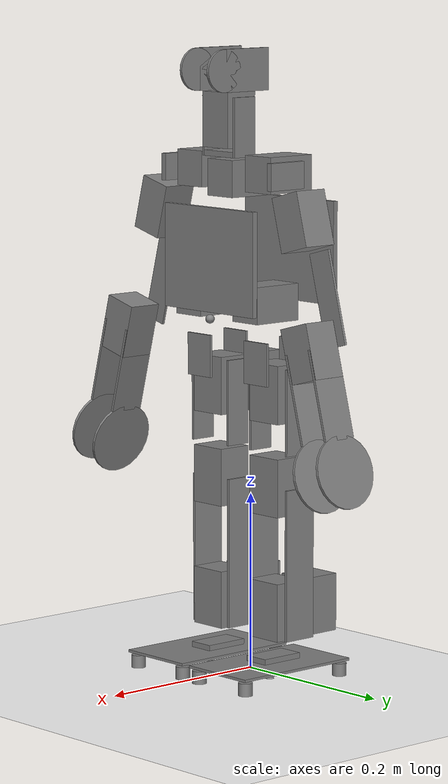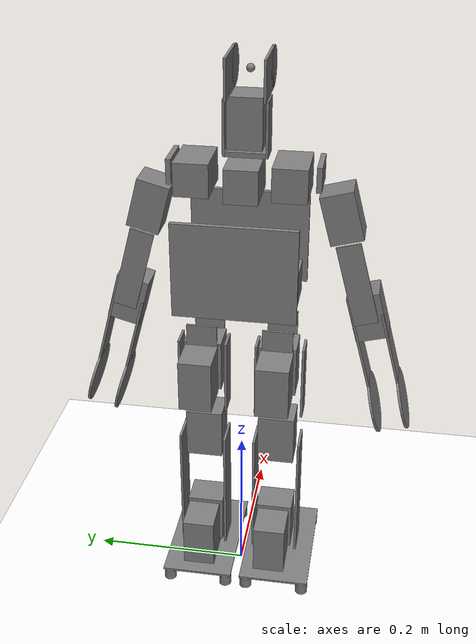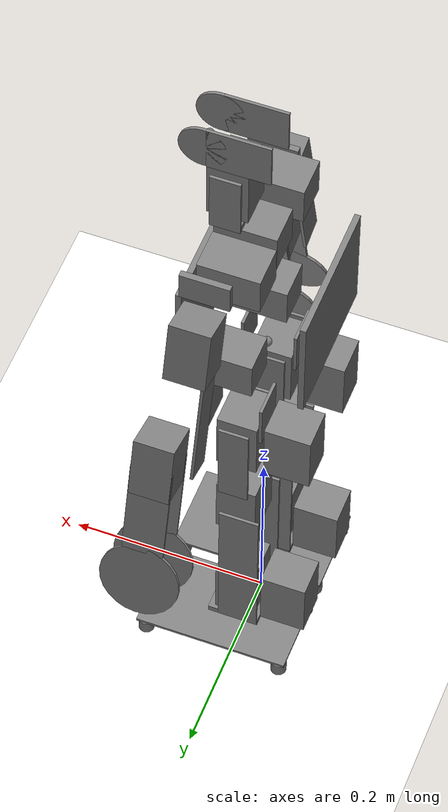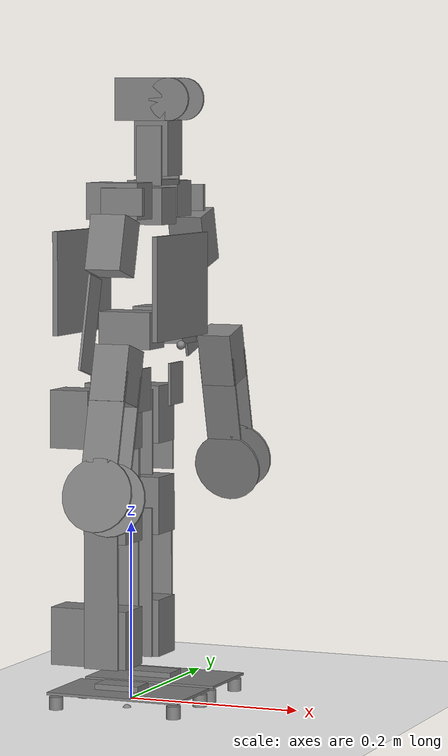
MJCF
<mujoco model="scene">
    <include file="sigmaban2024_motors_backlash.xml" />

    <visual>
        <headlight
            diffuse="0.6 0.6 0.6"
            ambient="0.3 0.3 0.3"
            specular="0 0 0"
        />
        <rgba haze="0.15 0.25 0.35 1" />
        <global azimuth="160" elevation="-20" />
    </visual>

    <asset>
        <texture
            type="skybox"
            builtin="gradient"
            rgb1="1 1 1"
            rgb2="1 1 1"
            width="800"
            height="800"
        />
        <texture
            type="2d"
            name="groundplane"
            builtin="checker"
            mark="edge"
            rgb1="1 1 1"
            rgb2="1 1 1"
            markrgb="0 0 0"
            width="300"
            height="300"
        />
        <material
            name="groundplane"
            texture="groundplane"
            texuniform="true"
            texrepeat="5 5"
            reflectance="0"
        />
    </asset>

    <worldbody>
        <body name="floor">
            <geom
                name="floor"
                size="0 0 0.01"
                type="plane"
                material="groundplane"
                contype="1"
                conaffinity="0"
                priority="1"
                friction="0.6"
                condim="3"
            />
        </body>
    </worldbody>

    <keyframe>
        <key
            name="home"
            qpos="
			    0 0 0.4
			    1 0 0 0

				0 0
				0 0
				0 0
				0 0
				0 0
				0 0
				0 0
				0 0

				0 0
				0 0
				-0.48 0
				1.0 0
				-0.48 0
				0 0

				0 0
				0 0
				-0.48 0
				1.00 0
				-0.48 0
				0 0

"
            ctrl="
				0
				0
				0
				0
				0
				0
				0
				0

				0
				0
				-0.48
				1.0
				-0.48
				0

				0
				0
				-0.48
				1.0
				-0.48
				0
          "
        />
    </keyframe>

    <!-- Marc's pose below -->

</mujoco>

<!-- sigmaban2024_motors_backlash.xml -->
<mujoco model="sigmaban">
    <compiler angle="radian"/>

    <default>
        <geom contype="0" conaffinity="0"/>
        <default class="cleat">
            <geom conaffinity="1" contype="1"/>
        </default>
    </default>

    <!-- KP=12 -->
    <default>
        <default class="mx106">
            <motor ctrlrange="-8 8"/>
            <joint damping="1.7" armature="0.025" frictionloss="0.10"/>
        </default>
        <default class="mx64">
            <motor ctrlrange="-5 5"/>
            <joint damping="0.66" armature="0.012" frictionloss="0.09"/>
        </default>
        <default class="backlash">
          <!-- +/- 0.5° of backlash -->
          <joint damping="0.01" frictionloss="0" armature="0.01" limited="true"
            range="-0.008726646259971648 0.008726646259971648"/>
        </default>
    </default>

    <!-- KP=18 -->

    <!-- KP=24 -->

    <!-- KP=32 (base pour la règle de 3)-->

    <option iterations="1" ls_iterations="5">
        <flag eulerdamp="disable"/>
    </option>

    <sensor>
        <gyro site="torso" name="gyro"/>
        <velocimeter site="torso" name="local_linvel"/>
        <accelerometer site="torso" name="accelerometer"/>
        <framezaxis objtype="site" objname="torso" name="upvector"/>
        <framexaxis objtype="site" objname="torso" name="forwardvector"/>
        <framelinvel objtype="site" objname="torso" name="global_linvel"/>
        <frameangvel objtype="site" objname="torso" name="global_angvel"/>
        <framepos objtype="site" objname="torso" name="position"/>
        <framequat objtype="site" objname="torso" name="orientation"/>
        <framelinvel objtype="site" objname="right_foot" name="right_foot_global_linvel"/>
        <framelinvel objtype="site" objname="left_foot" name="left_foot_global_linvel"/>
        <framexaxis objtype="site" objname="left_foot" name="left_foot_upvector"/>
        <framexaxis objtype="site" objname="right_foot" name="right_foot_upvector"/>
        <framepos objtype="site" objname="left_foot" name="left_foot_pos"/>
        <framepos objtype="site" objname="right_foot" name="right_foot_pos"/>
    </sensor>

    <worldbody>
        <body name="torso_2023" pos="0 0 0.4">
            <freejoint name="root"/>
            <site name="torso"/>
            <inertial pos="0.00156484 6.73262e-05 0.070745" quat="0.99676 -0.0200847 -0.0149022 0.0764468"
                mass="3.27516" diaginertia="0.0199727 0.0188364 0.0126333"/>
            <geom size="0.0725 0.057796 0.003" pos="0.0603892 1.47174e-07 0.0680823" quat="0.5 -0.5 0.5 -0.5" type="box"/>
            <geom size="0.0201 0.03055 0.0205" pos="0.0209392 0.0464001 0.022" quat="0 0.707107 -0.707107 0" type="box"/>
            <geom size="0.0201 0.03055 0.0205" pos="0.0209392 -0.0463999 0.022" quat="0 0.707107 -0.707107 0" type="box"/>
            <geom size="0.0201 0.03055 0.0205" pos="0.0158392 1.47174e-07 0.157" quat="0.707107 0 0 -0.707107"
                type="box"/>
            <geom size="0.0725 0.057796 0.003" pos="-0.0596108 1.47174e-07 0.0719177" quat="0.5 0.5 0.5 0.5" type="box"/>
            <geom size="0.0201 0.03055 0.0205" pos="0.0108392 0.0560001 0.164" quat="0.5 -0.5 -0.5 -0.5" type="box"/>
            <geom size="0.0201 0.03055 0.0205" pos="0.0108392 -0.0559999 0.164" quat="0.5 0.5 0.5 -0.5" type="box"/>
            <body name="head_base" pos="0.0333892 1.47174e-07 0.183">
                <inertial pos="0 0 0" mass="1e-09" diaginertia="0 0 0"/>
            </body>
            <site name="trunk" pos="0.0608892 1.47174e-07 0.0025"/>
            <body name="u_neck" pos="0.0333892 1.47174e-07 0.1805" quat="0.707107 0 0 -0.707107">
                <inertial pos="0 0 0.0206334" quat="0.707107 0 0 0.707107" mass="0.0544799"
                    diaginertia="5.16952e-05 3.05787e-05 2.98525e-05"/>
                <joint class="mx64" name="head_yaw" pos="0 0 0" axis="0 0 1"/>
                <joint name="head_yaw_backlash" pos="0 0 0" axis="0 0 1" class="backlash"/>
                <geom size="0.015 0.032901 0.0015" pos="0.025 0 0.032901" quat="0.5 0.5 -0.5 -0.5" type="box"/>
                <geom size="0.015 0.032901 0.0015" pos="-0.025 0 0.032901" quat="0.5 0.5 0.5 0.5" type="box"/>
                <geom size="0.0245 0.015 0.003125" pos="0 0 0.003125" quat="0 1 0 0" type="box"/>
                <body name="head_2023__field_of_view_false" pos="-0.0235 0 0.058302" quat="0.5 0.5 -0.5 -0.5">
                    <inertial pos="-0.000139837 0.00397747 -0.0233757" quat="0.713826 0.697167 -0.0325639 0.0578699"
                        mass="0.257265" diaginertia="0.000251953 0.000245992 0.000105535"/>
                    <joint class="mx64" name="head_pitch" pos="0 0 0" axis="0 0 1"/>
                    <joint name="head_pitch_backlash" pos="0 0 0" axis="0 0 1" class="backlash"/>
                    <geom size="0.0235 0.0015" pos="-0.0238 0.0365 -0.005" quat="0 0 1 0" type="cylinder"/>
                    <geom size="0.0308 0.0235 0.0015" pos="0.01 0.0365 -0.005" quat="0 0 1 0" type="box"/>
                    <geom size="0.0235 0.0015" pos="-0.0238 0.0365 -0.049" quat="0 0 1 0" type="cylinder"/>
                    <geom size="0.0308 0.0235 0.0015" pos="0.01 0.0365 -0.049" quat="0 0 1 0" type="box"/>
                    <geom size="0.0201 0.03055 0.0205" pos="0 -0.01755 -0.0235" type="box"/>
                    <site name="camera" pos="-0.024933 0.0335 -0.0235" quat="0 0.707107 0 -0.707107"/>
                </body>
            </body>
            <body name="u_shoulder_2023" pos="0.0283892 0.0795001 0.164" quat="0.707107 -0.707107 0 0">
                <inertial pos="0 0.00364642 0.0214003" quat="0.534183 0.463302 0.534183 0.463302" mass="0.0751043"
                    diaginertia="5.70899e-05 4.53448e-05 3.35766e-05"/>
                <joint class="mx64" name="left_shoulder_pitch" pos="0 0 0" axis="0 0 1"/>
                <joint name="left_shoulder_pitch_backlash" pos="0 0 0" axis="0 0 1" class="backlash"/>
                <geom size="0.0245 0.015 0.003125" pos="0 0 0.007125" quat="0 -1 0 0" type="box"/>
                <body name="left_humerus" pos="0.0235 0.03 0.03" quat="0.092296 -0.701057 0.092296 -0.701057">
                    <inertial pos="0.000340637 -0.0522685 -0.0268822" quat="0.6755 0.737155 -0.00965607 0.0144769"
                        mass="0.243502" diaginertia="0.0007708 0.000757172 7.90289e-05"/>
                    <joint class="mx64" name="left_shoulder_roll" pos="0 0 0" axis="0 0 1"/>
                    <joint name="left_shoulder_backlash" pos="0 0 0" axis="0 0 1" class="backlash"/>
                    <geom size="0.0201 0.03055 0.0205" pos="0 -0.01755 -0.0235" type="box"/>
                    <geom size="0.0525 0.015 0.0015" pos="0 -0.1045 -0.04" quat="0 0.707107 -0.707107 0" type="box"/>
                    <body name="radius_v2" pos="0.0235 -0.142 -0.0025" quat="0.707107 0 0.707107 0">
                        <inertial pos="7.98171e-05 -0.0556905 -0.0234333" quat="0.516125 0.5144 -0.483923 0.484589"
                            mass="0.256846" diaginertia="0.000947096 0.000937203 0.000130591"/>
                        <joint class="mx64" name="left_elbow" pos="0 0 0" axis="0 0 1"/>
                        <joint name="left_elbow_backlash" pos="0 0 0" axis="0 0 1" class="backlash"/>
                        <geom size="0.04 0.0015" pos="0 -0.1496 -0.042" quat="0.707107 0 0 -0.707107" type="cylinder"/>
                        <geom size="0.0497756 0.0206 0.0015" pos="0 -0.0649756 -0.042" quat="0.707107 0 0 -0.707107"
                            type="box"/>
                        <geom size="0.0201 0.03055 0.0205" pos="0 -0.01755 -0.0235" quat="1 0 0 0" type="box"/>
                        <geom size="0.04 0.0015" pos="0 -0.1496 -0.005" quat="0.707107 0 0 -0.707107" type="cylinder"/>
                        <geom size="0.0497756 0.0206 0.0015" pos="0 -0.0649756 -0.005" quat="0.707107 0 0 -0.707107"
                            type="box"/>
                    </body>
                </body>
            </body>
            <body name="u_shoulder_2023_2" pos="0.0283892 -0.0794999 0.164" quat="0 0 -0.707107 -0.707107">
                <inertial pos="0 -0.00364642 -0.0214003" quat="0.534183 0.463302 0.534183 0.463302" mass="0.0751043"
                    diaginertia="5.70899e-05 4.53448e-05 3.35766e-05"/>
                <joint class="mx64" name="right_shoulder_pitch" pos="0 0 0" axis="0 0 1"/>
                <joint name="right_shoulder_pitch_backlash" pos="0 0 0" axis="0 0 1" class="backlash"/>
                <geom size="0.0245 0.015 0.003125" pos="0 0 -0.007125" type="box"/>
                <body name="right_humerus" pos="-0.0235 -0.03 -0.03" quat="0.701057 0.092296 -0.701057 -0.092296">
                    <inertial pos="-0.000172255 -0.0522685 -0.0268669" quat="0.675487 0.736848 -0.0236007 0.014685"
                        mass="0.243502" diaginertia="0.000770875 0.000757172 7.90454e-05"/>
                    <joint class="mx64" name="right_shoulder_roll" pos="0 0 0" axis="0 0 1"/>
                    <joint name="right_shoulder_roll_backlash" pos="0 0 0" axis="0 0 1" class="backlash"/>
                    <geom size="0.0525 0.015 0.0015" pos="0 -0.1045 -0.04" quat="0 -0.707107 0.707107 0" type="box"/>
                    <geom size="0.0201 0.03055 0.0205" pos="0 -0.01755 -0.0235" type="box"/>
                    <body name="radius_v2_2" pos="-0.0235 -0.142 -0.0025" quat="0 -0.707107 0 -0.707107">
                        <inertial pos="7.98171e-05 0.0556905 0.0234333" quat="0.484589 0.483923 -0.5144 0.516125"
                            mass="0.256846" diaginertia="0.000947096 0.000937203 0.000130591"/>
                        <joint class="mx64" name="right_elbow" pos="0 0 0" axis="0 0 1"/>
                        <joint name="right_elbow_backlash" pos="0 0 0" axis="0 0 1" class="backlash"/>
                        <geom size="0.04 0.0015" pos="0 0.1496 0.005" quat="0 0.707107 0.707107 0" type="cylinder"/>
                        <geom size="0.0497756 0.0206 0.0015" pos="0 0.0649756 0.005" quat="0 0.707107 0.707107 0"
                            type="box"/>
                        <geom size="0.04 0.0015" pos="0 0.1496 0.042" quat="0 0.707107 0.707107 0" type="cylinder"/>
                        <geom size="0.0497756 0.0206 0.0015" pos="0 0.0649756 0.042" quat="0 0.707107 0.707107 0"
                            type="box"/>
                        <geom size="0.0201 0.03055 0.0205" pos="0 0.01755 0.0235" quat="0 1 0 0" type="box"/>
                    </body>
                </body>
            </body>
            <body name="u_block_2023" pos="0.0033892 0.0464001 -0.021" quat="0 0 0 -1">
                <inertial pos="-0.00509532 -8.44195e-07 -0.00985131" quat="0.531959 0.465906 0.466024 0.531765"
                    mass="0.0630136" diaginertia="4.24266e-05 3.5526e-05 2.00009e-05"/>
                <joint class="mx64" name="left_hip_yaw" pos="0 0 0" axis="0 0 1"/>
                <joint name="left_hip_yaw_backlash" pos="0 0 0" axis="0 0 1" class="backlash"/>
                <geom size="0.01875 0.02375 0.0015" pos="-0.03144 0 -0.02375" quat="0.5 0.5 0.5 0.5" type="box"/>
                <geom size="0.01875 0.02375 0.0015" pos="0.0219 0 -0.02375" quat="0.5 -0.5 0.5 -0.5" type="box"/>
                <body name="mx106_block_hip__list_0bj1pweadmbeeq_hip" pos="0.0234 0 -0.04" quat="0.5 0.5 -0.5 -0.5">
                    <inertial pos="-0.000525167 -0.0153964 0.00382779" quat="0.996695 -0.0796662 -0.00761504 0.0139099"
                        mass="0.397097" diaginertia="0.000428697 0.000375755 0.000176713"/>
                    <joint class="mx106" name="left_hip_roll" pos="0 0 0" axis="0 0 1"/>
                    <joint name="left_hip_roll_backlash" pos="0 0 0" axis="0 0 1" class="backlash"/>
                    <geom size="0.0201 0.03255 0.023" pos="0 -0.01805 -0.026" type="box"/>
                    <geom size="0.0201 0.03255 0.023" pos="0 -0.01805 0.0234" quat="0.707107 0 0.707107 0" type="box"/>
                    <body name="left_knee_2023" pos="0.0295 0 0.0234" quat="0 0.707107 0 0.707107">
                        <inertial pos="-3.04946e-05 0.100616 -0.0296228"
                            quat="0.722599 0.691267 -0.000117213 -0.000114115" mass="0.268473"
                            diaginertia="0.000539256 0.000462483 0.000122223"/>
                        <joint class="mx106" name="left_hip_pitch" pos="0 0 0" axis="0 0 1"/>
                        <joint name="left_hip_pitch_backlash" pos="0 0 0" axis="0 0 1" class="backlash"/>
                        <geom size="0.0201 0.03255 0.023" pos="0 0.12195 -0.0295" quat="1 0 0 0" type="box"/>
                        <geom size="0.015 0.04825 0.0015" pos="0 0.03725 -0.057" quat="0 1 0 0" type="box"/>
                        <geom size="0.015 0.04825 0.0015" pos="0 0.03725 0.0015" type="box"/>
                        <body name="tibia_2023" pos="0 0.14 -0.001" quat="1 0 0 0">
                            <inertial pos="-0.00296199 0.0631405 -0.0268398"
                                quat="0.706918 0.707174 -0.00934954 -0.00915237" mass="0.113077"
                                diaginertia="0.000351979 0.00027164 0.000103748"/>
                            <joint class="mx106" name="left_knee" pos="0 0 0" axis="0 0 1"/>
                            <joint name="left_knee_backlash" pos="0 0 0" axis="0 0 1" class="backlash"/>
                            <geom size="0.0202131 0.0850495 0.0015" pos="-0.0062131 0.068951 0.0015" quat="0 0 -1 0"
                                type="box"/>
                            <geom size="0.0202131 0.0850495 0.0015" pos="-0.0062131 0.068951 -0.05594" quat="0 0 -1 0"
                                type="box"/>
                            <body name="mx106_block_mir_ankle" pos="0 0.14 0" quat="0 0 0 1">
                                <inertial pos="0.0195695 0.0153964 -0.0290274"
                                    quat="-0.0662501 0.699432 0.0464073 0.710107" mass="0.397097"
                                    diaginertia="0.000428738 0.000375795 0.000176713"/>
                                <joint class="mx106" name="left_ankle_pitch" pos="0 0 0" axis="0 0 1"/>
                                <joint name="left_ankle_pitch_backlash" pos="0 0 0" axis="0 0 1" class="backlash"/>
                                <geom size="0.0201 0.03255 0.023" pos="0 0.01805 -0.0285" quat="0 0 0 1" type="box"/>
                                <geom size="0.0201 0.03255 0.023" pos="0.0494 0.01805 -0.0285"
                                    quat="0 -0.707107 0 0.707107" type="box"/>
                                <body name="left_foot___list_t0v6opd9rekumc_default" pos="0.0234 0 -0.0285"
                                    quat="0.707107 0 -0.707107 0">
                                    <inertial pos="0.00454445 -0.0365542 0.0466461"
                                        quat="0.711591 -0.00419889 0.011253 0.702491" mass="0.281856"
                                        diaginertia="0.000922792 0.000718237 0.000264953"/>
                                    <joint class="mx106" name="left_ankle_roll" pos="0 0 0" axis="0 0 1"/>
                                    <joint name="left_ankle_roll_backlash" pos="0 0 0" axis="0 0 1" class="backlash"/>
                                    <geom size="0.02617 0.015 0.003125" pos="0 -0.036875 0.02817"
                                        quat="0.5 0.5 0.5 -0.5" type="box"/>
                                    <geom size="0.046 0.0788 0.0015" pos="0.0055 -0.0415 0.03867"
                                        quat="0.707107 -0.707107 0 0" type="box" name="left_foot_rectangle"/>

                                    <body name="left_foot_cleat_back_left">
                                        <site name="left_foot_cleat_back_left" quat="0.5 -0.5 -0.5 -0.5"/>
                                        <geom class="cleat" size="0.008 0.008" pos="0.0435 -0.0535 -0.03213"
                                            quat="0.707107 0.707107 0 0" type="cylinder" name="left_foot_cleat_back_left"/>
                                    </body>

                                    <body name="left_foot_cleat_back_right">
                                        <site name="left_foot_cleat_back_right" quat="0.5 -0.5 -0.5 -0.5"/>
                                        <geom class="cleat" size="0.008 0.008" pos="-0.0325 -0.0535 -0.03213"
                                            quat="0.707107 0.707107 0 0" type="cylinder" name="left_foot_cleat_back_right"/>
                                    </body>

                                    <body name="left_foot_cleat_front_left">
                                        <site name="left_foot_cleat_front_left" quat="0.5 -0.5 -0.5 -0.5"/>
                                        <geom class="cleat" size="0.008 0.008" pos="0.0435 -0.0535 0.10947"
                                            quat="0 0 -0.707107 0.707107" type="cylinder" name="left_foot_cleat_front_left"/>
                                    </body>

                                    <body name="left_foot_cleat_front_right">
                                        <site name="left_foot_cleat_front_right" quat="0.5 -0.5 -0.5 -0.5"/>
                                        <geom class="cleat" size="0.008 0.008" pos="-0.0325 -0.0535 0.10947"
                                            quat="0 0 -0.707107 0.707107" type="cylinder" name="left_foot_cleat_front_right"/>
                                    </body>

                                    <site name="left_foot" pos="0.003 -0.0615 0.03617" quat="0.5 -0.5 -0.5 -0.5"/>

                                    <body name="left_ps_0" pos="-0.0325 -0.0615 0.10947" quat="0.5 -0.5 -0.5 -0.5">
                                        <inertial pos="0 0 0" mass="1e-09" diaginertia="0 0 0"/>
                                    </body>
                                    <body name="left_ps_1" pos="-0.0325 -0.0615 -0.03213" quat="0.5 -0.5 -0.5 -0.5">
                                        <inertial pos="0 0 0" mass="1e-09" diaginertia="0 0 0"/>
                                    </body>
                                    <body name="left_ps_2" pos="0.0435 -0.0615 -0.03213" quat="0.5 -0.5 -0.5 -0.5">
                                        <inertial pos="0 0 0" mass="1e-09" diaginertia="0 0 0"/>
                                    </body>
                                    <body name="left_ps_3" pos="0.0435 -0.0615 0.10947" quat="0.5 -0.5 -0.5 -0.5">
                                        <inertial pos="0 0 0" mass="1e-09" diaginertia="0 0 0"/>
                                    </body>
                                </body>
                            </body>
                        </body>
                    </body>
                </body>
            </body>
            <body name="u_block_2023_2" pos="0.0033892 -0.0463999 -0.021" quat="0 0 0 -1">
                <inertial pos="-0.00509532 -8.44195e-07 -0.00985131" quat="0.531959 0.465906 0.466024 0.531765"
                    mass="0.0630136" diaginertia="4.24266e-05 3.5526e-05 2.00009e-05"/>
                <joint class="mx64" name="right_hip_yaw" pos="0 0 0" axis="0 0 1"/>
                <joint name="right_hip_yaw_backlash" pos="0 0 0" axis="0 0 1" class="backlash"/>
                <geom size="0.01875 0.02375 0.0015" pos="-0.03144 0 -0.02375" quat="0.5 0.5 0.5 0.5" type="box"/>
                <geom size="0.01875 0.02375 0.0015" pos="0.0219 0 -0.02375" quat="0.5 -0.5 0.5 -0.5" type="box"/>
                <body name="mx106_block_mir_hip__list_mr67plvazplf9a_hip" pos="0.0234 0 -0.04" quat="0.5 0.5 -0.5 -0.5">
                    <inertial pos="0.000527445 -0.0153964 0.00383064" quat="0.996695 -0.0796624 0.0075433 -0.0140338"
                        mass="0.397097" diaginertia="0.000428741 0.000375798 0.000176713"/>
                    <joint class="mx106" name="right_hip_roll" pos="0 0 0" axis="0 0 1"/>
                    <joint name="right_hip_roll_backlash" pos="0 0 0" axis="0 0 1" class="backlash"/>
                    <geom size="0.0201 0.03255 0.023" pos="0 -0.01805 -0.026" type="box"/>
                    <geom size="0.0201 0.03255 0.023" pos="0 -0.01805 0.0234" quat="0.707107 0 -0.707107 0" type="box"/>
                    <body name="right_knee_2023" pos="-0.0295 0 0.0234" quat="0.707107 0 0.707107 0">
                        <inertial pos="-3.04946e-05 -0.100616 0.0296089"
                            quat="0.722631 0.691234 0.000116647 0.000114696" mass="0.268473"
                            diaginertia="0.000539257 0.000462486 0.000122221"/>
                        <joint class="mx106" name="right_hip_pitch" pos="0 0 0" axis="0 0 1"/>
                        <joint name="right_hip_pitch_backlash" pos="0 0 0" axis="0 0 1" class="backlash"/>
                        <geom size="0.015 0.04825 0.0015" pos="0 -0.03725 -0.0015" quat="0 1 0 0" type="box"/>
                        <geom size="0.015 0.04825 0.0015" pos="0 -0.03725 0.057" quat="1 0 0 0" type="box"/>
                        <geom size="0.0201 0.03255 0.023" pos="0 -0.12195 0.0295" quat="0 -1 0 0" type="box"/>
                        <body name="tibia_2023_2" pos="0 -0.14 0.001" quat="0 0 0 -1">
                            <inertial pos="-0.00296199 0.0631406 0.0268398"
                                quat="0.707175 0.706918 -0.00915244 -0.00934946" mass="0.113077"
                                diaginertia="0.000351979 0.00027164 0.000103748"/>
                            <joint class="mx106" name="right_knee" pos="0 0 0" axis="0 0 1"/>
                            <joint name="right_knee_backlash" pos="0 0 0" axis="0 0 1" class="backlash"/>
                            <geom size="0.0202131 0.0850495 0.0015" pos="-0.0062131 0.068951 0.05594" quat="0 0 1 0"
                                type="box"/>
                            <geom size="0.0202131 0.0850495 0.0015" pos="-0.0062131 0.068951 -0.0015" quat="0 0 -1 0"
                                type="box"/>
                            <body name="mx106_block_ankle__list_0bj1pweadmbeeq_default" pos="0 0.14 0" quat="1 0 0 0">
                                <inertial pos="-0.0195724 -0.0153964 0.0290252"
                                    quat="-0.0661652 0.699382 0.0464976 0.710158" mass="0.397097"
                                    diaginertia="0.000428694 0.000375752 0.000176714"/>
                                <joint class="mx106" name="right_ankle_pitch" pos="0 0 0" axis="0 0 1"/>
                                <joint name="right_ankle_pitch_backlash" pos="0 0 0" axis="0 0 1" class="backlash"/>
                                <geom size="0.0201 0.03255 0.023" pos="0 -0.01805 0.0285" quat="0 0 -1 0" type="box"/>
                                <geom size="0.0201 0.03255 0.023" pos="-0.0494 -0.01805 0.0285"
                                    quat="0.707107 0 0.707107 0" type="box"/>
                                <body name="right_foot_" pos="-0.0234 0 0.0285" quat="0 -0.707107 0 -0.707107">
                                    <inertial pos="-0.00454439 -0.0365542 0.0466461"
                                        quat="0.702491 -0.0112532 0.00419872 0.711591" mass="0.281856"
                                        diaginertia="0.000922792 0.000718237 0.000264953"/>
                                    <joint class="mx106" name="right_ankle_roll" pos="0 0 0" axis="0 0 1"/>
                                    <joint name="right_ankle_roll_backlash" pos="0 0 0" axis="0 0 1" class="backlash"/>
                                    <geom size="0.02617 0.015 0.003125" pos="0 -0.036875 0.02817"
                                        quat="0.5 0.5 0.5 -0.5" type="box"/>
                                    <geom size="0.046 0.0788 0.0015" pos="-0.0055 -0.0415 0.03867"
                                        quat="0.707107 -0.707107 0 0" type="box" name="right_foot_rectangle"/>

                                    <body name="right_foot_cleat_back_right">
                                        <site name="right_foot_cleat_back_right" quat="0.5 -0.5 -0.5 -0.5"/>
                                        <geom class="cleat" size="0.008 0.008" pos="-0.0435 -0.0535 -0.03213"
                                            quat="0.707107 0.707107 0 0" type="cylinder" name="right_foot_cleat_back_right"/>
                                    </body>
                                    <body name="right_foot_cleat_back_left">
                                        <site name="right_foot_cleat_back_left" quat="0.5 -0.5 -0.5 -0.5"/>
                                        <geom class="cleat" size="0.008 0.008" pos="0.0325 -0.0535 -0.03213"
                                            quat="0.707107 0.707107 0 0" type="cylinder" name="right_foot_cleat_back_left"/>
                                    </body>
                                    <body name="right_foot_cleat_front_right">
                                        <site name="right_foot_cleat_front_right" quat="0.5 -0.5 -0.5 -0.5"/>
                                        <geom class="cleat" size="0.008 0.008" pos="-0.0435 -0.0535 0.10947"
                                            quat="0 0 -0.707107 0.707107" type="cylinder" name="right_foot_cleat_front_right"/>
                                    </body>
                                    <body name="right_foot_cleat_front_left">
                                        <site name="right_foot_cleat_front_left" quat="0.5 -0.5 -0.5 -0.5"/>

                                        <geom class="cleat" size="0.008 0.008" pos="0.0325 -0.0535 0.10947"
                                            quat="0 0 -0.707107 0.707107" type="cylinder" name="right_foot_cleat_front_left"/>
                                    </body>

                                    <site name="right_foot" pos="-0.003 -0.0615 0.03617" quat="0.5 -0.5 -0.5 -0.5"/>

                                    <body name="right_ps_0" pos="-0.0435 -0.0615 0.10947" quat="0.5 -0.5 -0.5 -0.5">
                                        <inertial pos="0 0 0" mass="1e-09" diaginertia="0 0 0"/>
                                    </body>
                                    <body name="right_ps_1" pos="-0.0435 -0.0615 -0.03213" quat="0.5 -0.5 -0.5 -0.5">
                                        <inertial pos="0 0 0" mass="1e-09" diaginertia="0 0 0"/>
                                    </body>
                                    <body name="right_ps_2" pos="0.0325 -0.0615 -0.03213" quat="0.5 -0.5 -0.5 -0.5">
                                        <inertial pos="0 0 0" mass="1e-09" diaginertia="0 0 0"/>
                                    </body>
                                    <body name="right_ps_3" pos="0.0325 -0.0615 0.10947" quat="0.5 -0.5 -0.5 -0.5">
                                        <inertial pos="0 0 0" mass="1e-09" diaginertia="0 0 0"/>
                                    </body>
                                </body>
                            </body>
                        </body>
                    </body>
                </body>
            </body>
        </body>
    </worldbody>

    <sensor>
        <force site="left_foot_cleat_front_right" name="left_foot_cleat_front_right"/>
        <force site="left_foot_cleat_front_left" name="left_foot_cleat_front_left"/>
        <force site="left_foot_cleat_back_right" name="left_foot_cleat_back_right"/>
        <force site="left_foot_cleat_back_left" name="left_foot_cleat_back_left"/>
        <force site="right_foot_cleat_front_right" name="right_foot_cleat_front_right"/>
        <force site="right_foot_cleat_front_left" name="right_foot_cleat_front_left"/>
        <force site="right_foot_cleat_back_right" name="right_foot_cleat_back_right"/>
        <force site="right_foot_cleat_back_left" name="right_foot_cleat_back_left"/>
    </sensor>

    <actuator>
        <motor class="mx64" name="head_yaw" joint="head_yaw"/>
        <motor class="mx64" name="head_pitch" joint="head_pitch"/>
        <motor class="mx64" name="left_shoulder_pitch" joint="left_shoulder_pitch" />
        <motor class="mx64" name="left_shoulder_roll" joint="left_shoulder_roll" />
        <motor class="mx64" name="left_elbow" joint="left_elbow" />
        <motor class="mx64" name="right_shoulder_pitch" joint="right_shoulder_pitch" />
        <motor class="mx64" name="right_shoulder_roll" joint="right_shoulder_roll" />
        <motor class="mx64" name="right_elbow" joint="right_elbow" />

        <motor class="mx64" name="left_hip_yaw" joint="left_hip_yaw" />
        <motor class="mx106" name="left_hip_roll" joint="left_hip_roll" />
        <motor class="mx106" name="left_hip_pitch" joint="left_hip_pitch" />
        <motor class="mx106" name="left_knee" joint="left_knee" />
        <motor class="mx106" name="left_ankle_pitch" joint="left_ankle_pitch" />
        <motor class="mx106" name="left_ankle_roll" joint="left_ankle_roll" />

        <motor class="mx64" name="right_hip_yaw" joint="right_hip_yaw" />
        <motor class="mx106" name="right_hip_roll" joint="right_hip_roll" />
        <motor class="mx106" name="right_hip_pitch" joint="right_hip_pitch" />
        <motor class="mx106" name="right_knee" joint="right_knee" />
        <motor class="mx106" name="right_ankle_pitch" joint="right_ankle_pitch" />
        <motor class="mx106" name="right_ankle_roll" joint="right_ankle_roll" />

    </actuator>
</mujoco>
